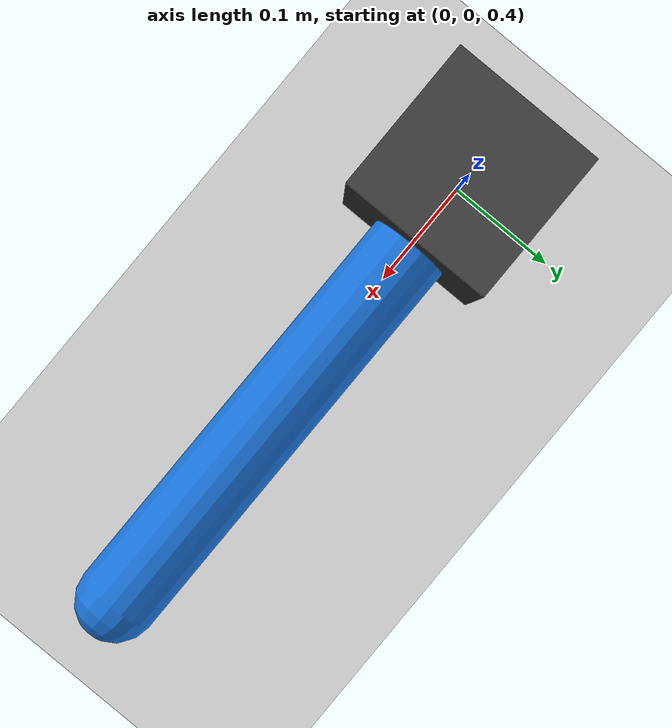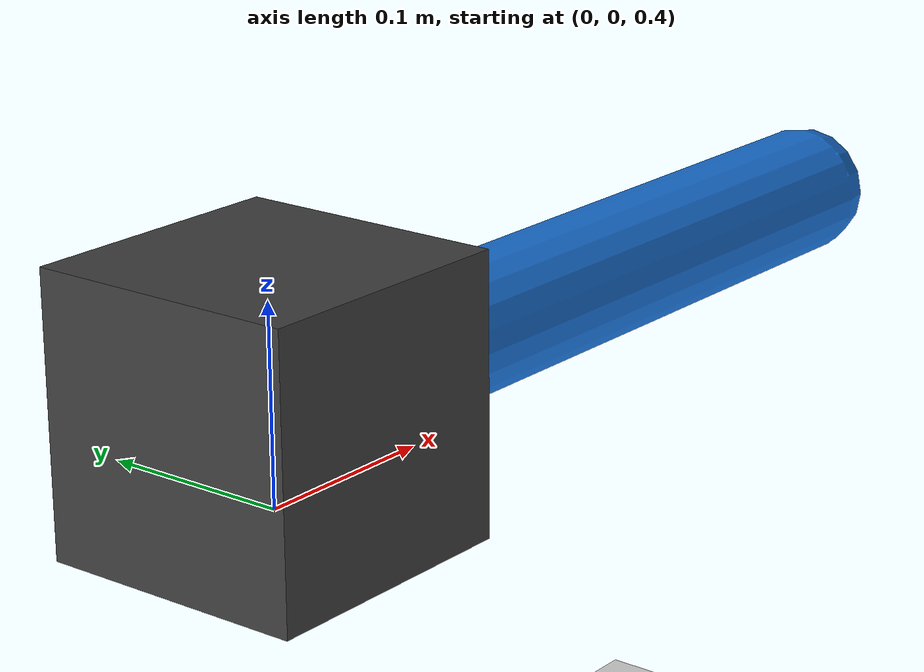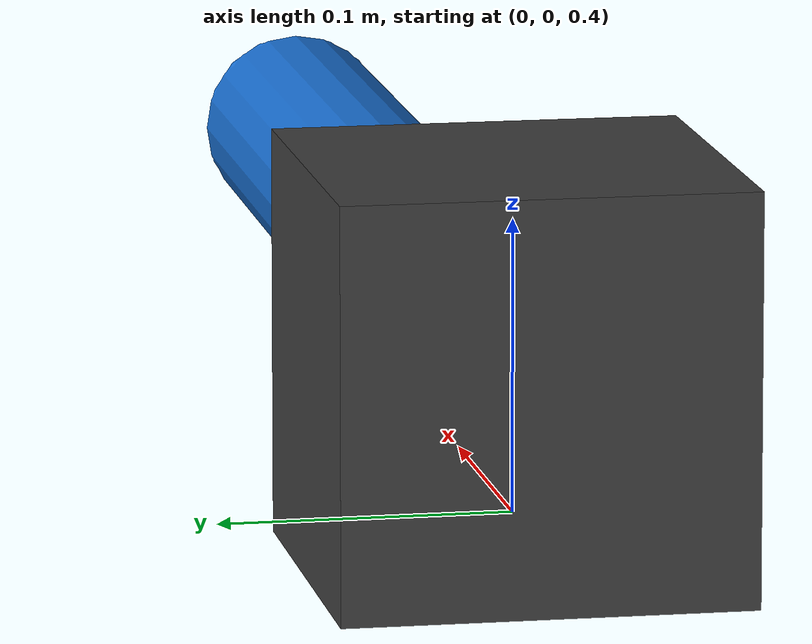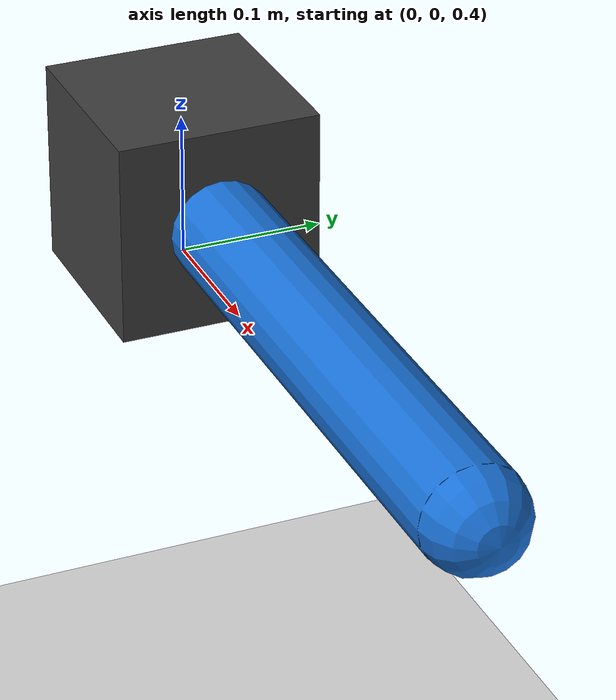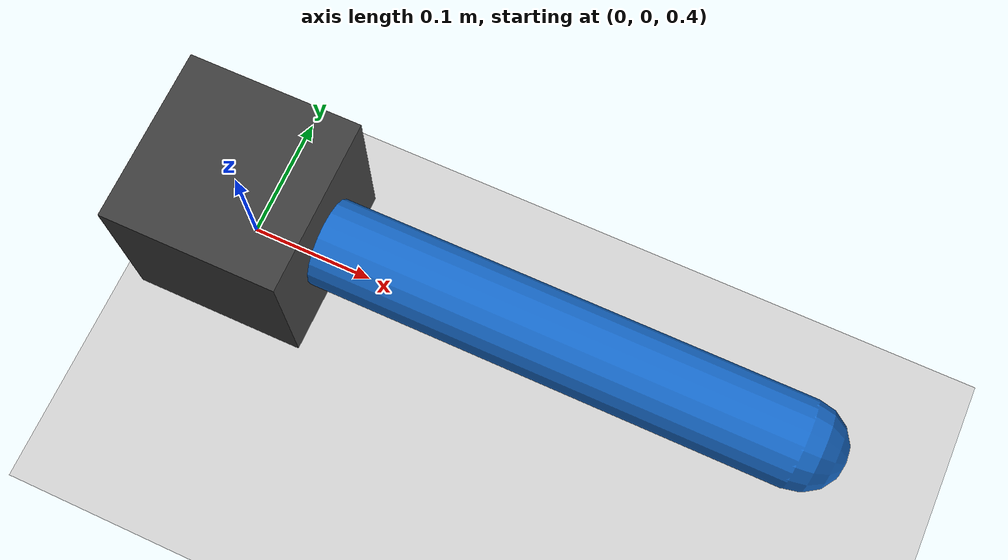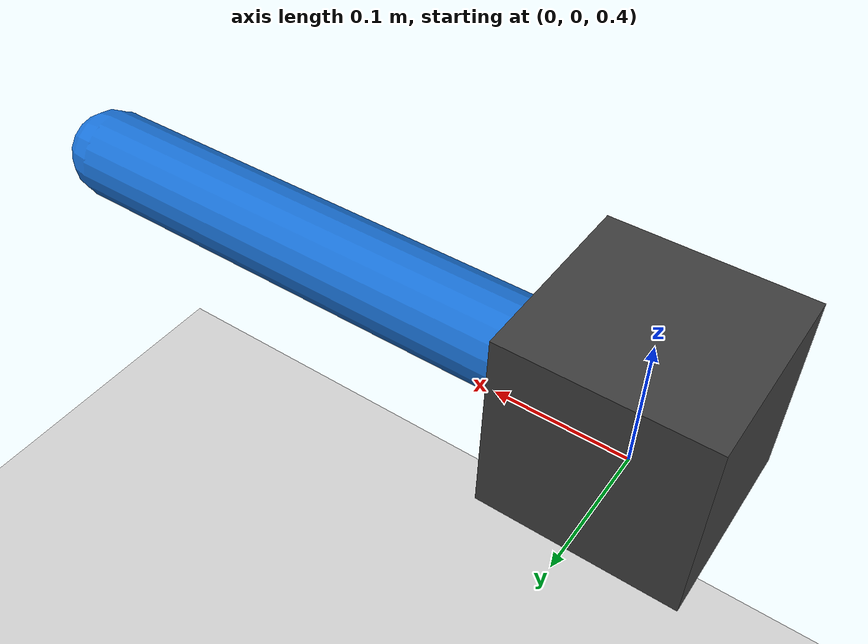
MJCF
<mujoco model="B01_single_joint">

  <compiler angle="radian" coordinate="local"/>

  <option timestep="0.01" gravity="0 0 -9.81" integrator="RK4"/>

  <default>
    <joint damping="0.05" armature="0.01" limited="true"/>
    <geom density="500" friction="0.8 0.1 0.1"/>
  </default>

  <asset>
    <material name="base_mat" rgba="0.25 0.25 0.25 1"/>
    <material name="link_mat" rgba="0.1 0.45 0.85 1"/>
    <material name="ground_mat" rgba="0.85 0.85 0.85 1"/>
  </asset>

  <worldbody>
    <light name="main_light" pos="0 -2 3" dir="0 1 -1" diffuse="0.8 0.8 0.8"/>
    <camera name="fixed" pos="0 -2.2 1.0" xyaxes="1 0 0 0 0.35 1"/>

    <geom name="ground" type="plane" pos="0 0 0" size="2 2 0.02" material="ground_mat"/>

    <body name="base" pos="0 0 0.45">
      <geom name="base_geom" type="box" size="0.07 0.07 0.07" material="base_mat"/>

      <body name="single_link" pos="0 0 0">
        <!--
          hinge 轴沿 y 方向，link 在 x-z 平面内转动。
          range 只用于避免极端姿态；MPC 初期可先在较小角度目标上测试。
        -->
        <joint
          name="single_hinge"
          type="hinge"
          axis="0 1 0"
          range="-3.14159 3.14159"
          damping="0.05"
          armature="0.01"/>

        <geom
          name="single_link_geom"
          type="capsule"
          fromto="0 0 0 0.45 0 0"
          size="0.035"
          material="link_mat"/>

        <site name="tip_site" pos="0.45 0 0" size="0.025" rgba="1 0.2 0.1 1"/>
      </body>
    </body>
  </worldbody>

  <actuator>
    <!--
      B01 控制输入 tau。
      ctrlrange 与脚本参数 torque_limit 应保持一致或由环境层检查。
    -->
    <motor
      name="single_joint_motor"
      joint="single_hinge"
      gear="1"
      ctrllimited="true"
      ctrlrange="-2 2"/>
  </actuator>

  <sensor>
    <jointpos name="single_hinge_q" joint="single_hinge"/>
    <jointvel name="single_hinge_dq" joint="single_hinge"/>
    <actuatorfrc name="single_joint_tau" actuator="single_joint_motor"/>
  </sensor>
</mujoco>
